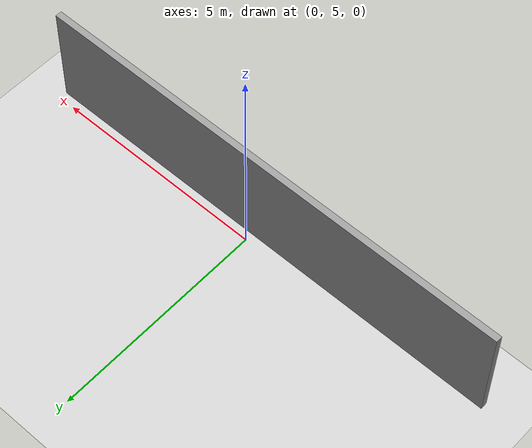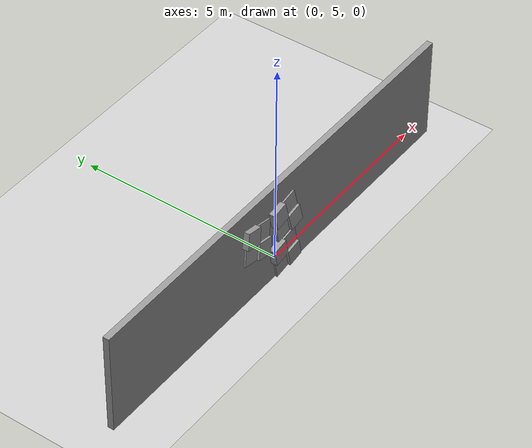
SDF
<sdf version="1.7">
 <world name="default">
  <model name="demo_clean">
   <static>1</static>
   <link name="Wall_9">
    <collision name="Wall_9_Collision">
     <geometry><box><size>11.25 0.15 2.5</size></box></geometry>
     <pose>0 0 1.25 0 -0 0</pose>
     <surface>
      <friction>
       <ode><mu>1</mu><mu2>1</mu2><fdir1>0 0 0</fdir1><slip1>0</slip1><slip2>0</slip2></ode>
       <torsional>
        <coefficient>1</coefficient>
        <patch_radius>0</patch_radius>
        <surface_radius>0</surface_radius>
        <use_patch_radius>1</use_patch_radius>
        <ode><slip>0</slip></ode>
       </torsional>
      </friction>
      <bounce><restitution_coefficient>0</restitution_coefficient><threshold>1e+06</threshold></bounce>
      <contact>
       <collide_without_contact>0</collide_without_contact>
       <collide_without_contact_bitmask>1</collide_without_contact_bitmask>
       <collide_bitmask>1</collide_bitmask>
       <ode>
        <soft_cfm>0</soft_cfm>
        <soft_erp>0.2</soft_erp>
        <kp>1e+13</kp>
        <kd>1</kd>
        <max_vel>0.01</max_vel>
        <min_depth>0</min_depth>
       </ode>
       <bullet>
        <split_impulse>1</split_impulse>
        <split_impulse_penetration_threshold>-0.01</split_impulse_penetration_threshold>
        <soft_cfm>0</soft_cfm>
        <soft_erp>0.2</soft_erp>
        <kp>1e+13</kp>
        <kd>1</kd>
       </bullet>
      </contact>
     </surface>
    </collision>
    <visual name="Wall_9_Visual">
     <geometry><box><size>11.25 0.15 2.5</size></box></geometry>
     <material>
      <script><name>Gazebo/Grey</name><uri>file://media/materials/scripts/gazebo.material</uri></script>
      <ambient>1 1 1 1</ambient>
      <shader type="pixel"><normal_map>default</normal_map></shader>
     </material>
     <pose>0 0 1.25 0 -0 0</pose>
    </visual>
    <pose>-0.246486 4.74118 0 0 -0 0</pose>
   </link>
  </model>
  <model name="ground_plane">
   <static>1</static>
   <link name="link">
    <collision name="collision">
     <geometry><plane><normal>0 0 1</normal><size>100 100</size></plane></geometry>
     <surface>
      <contact><collide_bitmask>65535</collide_bitmask></contact>
      <friction><ode><mu>100</mu><mu2>50</mu2></ode></friction>
     </surface>
    </collision>
    <visual name="visual">
     <cast_shadows>0</cast_shadows>
     <geometry><plane><normal>0 0 1</normal><size>100 100</size></plane></geometry>
     <material>
      <script><uri>file://media/materials/scripts/gazebo.material</uri><name>Gazebo/Grey</name></script>
     </material>
    </visual>
   </link>
  </model>
  <model name="wall_slate_54">
   <static>1</static>
   <link name="link_0">
    <inertial><mass>1</mass></inertial>
    <gravity>0</gravity>
    <visual name="visual">
     <pose>0 0.2 0.2 0 -0 0</pose>
     <geometry><box><size>0.16 0.4 0.4</size></box></geometry>
     <material>
      <lighting>1</lighting>
      <script><uri>file://media/materials/scripts/gazebo.material</uri><name>Gazebo/Grey</name></script>
      <shader type="pixel"><normal_map>__default__</normal_map></shader>
      <ambient>0.3 0.3 0.3 1</ambient>
      <diffuse>0.7 0.7 0.7 1</diffuse>
      <specular>0.01 0.01 0.01 1</specular>
      <emissive>0 0 0 1</emissive>
     </material>
    </visual>
    <visual name="ModelPreview_0::link_0::visual_1">
     <pose>0 0.2 -0.2 0 -0 0</pose>
     <geometry><box><size>0.04 0.4 0.4</size></box></geometry>
     <material>
      <lighting>1</lighting>
      <script><uri>file://media/materials/scripts/gazebo.material</uri><name>Gazebo/Grey</name></script>
      <shader type="pixel"><normal_map>__default__</normal_map></shader>
      <ambient>0.3 0.3 0.3 1</ambient>
      <diffuse>0.7 0.7 0.7 1</diffuse>
      <specular>0.01 0.01 0.01 1</specular>
      <emissive>0 0 0 1</emissive>
     </material>
    </visual>
    <visual name="ModelPreview_0::link_0::visual_2">
     <pose>0 -0.2 0.2 0 -0 0</pose>
     <geometry><box><size>0.04 0.4 0.4</size></box></geometry>
     <material>
      <lighting>1</lighting>
      <script><uri>file://media/materials/scripts/gazebo.material</uri><name>Gazebo/Grey</name></script>
      <shader type="pixel"><normal_map>__default__</normal_map></shader>
      <ambient>0.3 0.3 0.3 1</ambient>
      <diffuse>0.7 0.7 0.7 1</diffuse>
      <specular>0.01 0.01 0.01 1</specular>
      <emissive>0 0 0 1</emissive>
     </material>
    </visual>
    <visual name="ModelPreview_0::link_0::visual_3">
     <pose>0 -0.2 -0.2 0 -0 0</pose>
     <geometry><box><size>0.16 0.4 0.4</size></box></geometry>
     <material>
      <lighting>1</lighting>
      <script><uri>file://media/materials/scripts/gazebo.material</uri><name>Gazebo/Grey</name></script>
      <shader type="pixel"><normal_map>__default__</normal_map></shader>
      <ambient>0.3 0.3 0.3 1</ambient>
      <diffuse>0.7 0.7 0.7 1</diffuse>
      <specular>0.01 0.01 0.01 1</specular>
      <emissive>0 0 0 1</emissive>
     </material>
    </visual>
    <collision name="collision_2">
     <pose>0 -0.2 0.2 0 -0 0</pose>
     <geometry><box><size>0.04 0.4 0.4</size></box></geometry>
     <surface>
      <friction>
       <ode><mu>1</mu><mu2>1</mu2><fdir1>0 0 0</fdir1><slip1>0</slip1><slip2>0</slip2></ode>
       <torsional>
        <coefficient>1</coefficient>
        <patch_radius>0</patch_radius>
        <surface_radius>0</surface_radius>
        <use_patch_radius>1</use_patch_radius>
        <ode><slip>0</slip></ode>
       </torsional>
      </friction>
      <bounce><restitution_coefficient>0</restitution_coefficient><threshold>1e+06</threshold></bounce>
      <contact>
       <collide_without_contact>0</collide_without_contact>
       <collide_without_contact_bitmask>1</collide_without_contact_bitmask>
       <collide_bitmask>1</collide_bitmask>
       <ode>
        <soft_cfm>0</soft_cfm>
        <soft_erp>0.2</soft_erp>
        <kp>1e+13</kp>
        <kd>1</kd>
        <max_vel>0.01</max_vel>
        <min_depth>0</min_depth>
       </ode>
       <bullet>
        <split_impulse>1</split_impulse>
        <split_impulse_penetration_threshold>-0.01</split_impulse_penetration_threshold>
        <soft_cfm>0</soft_cfm>
        <soft_erp>0.2</soft_erp>
        <kp>1e+13</kp>
        <kd>1</kd>
       </bullet>
      </contact>
     </surface>
    </collision>
    <collision name="collision_1">
     <pose>0 0.2 -0.2 0 -0 0</pose>
     <geometry><box><size>0.04 0.4 0.4</size></box></geometry>
     <surface>
      <friction>
       <ode><mu>1</mu><mu2>1</mu2><fdir1>0 0 0</fdir1><slip1>0</slip1><slip2>0</slip2></ode>
       <torsional>
        <coefficient>1</coefficient>
        <patch_radius>0</patch_radius>
        <surface_radius>0</surface_radius>
        <use_patch_radius>1</use_patch_radius>
        <ode><slip>0</slip></ode>
       </torsional>
      </friction>
      <bounce><restitution_coefficient>0</restitution_coefficient><threshold>1e+06</threshold></bounce>
      <contact>
       <collide_without_contact>0</collide_without_contact>
       <collide_without_contact_bitmask>1</collide_without_contact_bitmask>
       <collide_bitmask>1</collide_bitmask>
       <ode>
        <soft_cfm>0</soft_cfm>
        <soft_erp>0.2</soft_erp>
        <kp>1e+13</kp>
        <kd>1</kd>
        <max_vel>0.01</max_vel>
        <min_depth>0</min_depth>
       </ode>
       <bullet>
        <split_impulse>1</split_impulse>
        <split_impulse_penetration_threshold>-0.01</split_impulse_penetration_threshold>
        <soft_cfm>0</soft_cfm>
        <soft_erp>0.2</soft_erp>
        <kp>1e+13</kp>
        <kd>1</kd>
       </bullet>
      </contact>
     </surface>
    </collision>
    <collision name="collision_4">
     <pose>0 0.2 0.2 0 -0 0</pose>
     <geometry><box><size>0.16 0.4 0.4</size></box></geometry>
     <surface>
      <friction>
       <ode><mu>1</mu><mu2>1</mu2><fdir1>0 0 0</fdir1><slip1>0</slip1><slip2>0</slip2></ode>
       <torsional>
        <coefficient>1</coefficient>
        <patch_radius>0</patch_radius>
        <surface_radius>0</surface_radius>
        <use_patch_radius>1</use_patch_radius>
        <ode><slip>0</slip></ode>
       </torsional>
      </friction>
      <bounce><restitution_coefficient>0</restitution_coefficient><threshold>1e+06</threshold></bounce>
      <contact>
       <collide_without_contact>0</collide_without_contact>
       <collide_without_contact_bitmask>1</collide_without_contact_bitmask>
       <collide_bitmask>1</collide_bitmask>
       <ode>
        <soft_cfm>0</soft_cfm>
        <soft_erp>0.2</soft_erp>
        <kp>1e+13</kp>
        <kd>1</kd>
        <max_vel>0.01</max_vel>
        <min_depth>0</min_depth>
       </ode>
       <bullet>
        <split_impulse>1</split_impulse>
        <split_impulse_penetration_threshold>-0.01</split_impulse_penetration_threshold>
        <soft_cfm>0</soft_cfm>
        <soft_erp>0.2</soft_erp>
        <kp>1e+13</kp>
        <kd>1</kd>
       </bullet>
      </contact>
     </surface>
    </collision>
    <collision name="collision_3">
     <pose>0 -0.2 -0.2 0 -0 0</pose>
     <geometry><box><size>0.16 0.4 0.4</size></box></geometry>
     <surface>
      <friction>
       <ode><mu>1</mu><mu2>1</mu2><fdir1>0 0 0</fdir1><slip1>0</slip1><slip2>0</slip2></ode>
       <torsional>
        <coefficient>1</coefficient>
        <patch_radius>0</patch_radius>
        <surface_radius>0</surface_radius>
        <use_patch_radius>1</use_patch_radius>
        <ode><slip>0</slip></ode>
       </torsional>
      </friction>
      <bounce><restitution_coefficient>0</restitution_coefficient><threshold>1e+06</threshold></bounce>
      <contact>
       <collide_without_contact>0</collide_without_contact>
       <collide_without_contact_bitmask>1</collide_without_contact_bitmask>
       <collide_bitmask>1</collide_bitmask>
       <ode>
        <soft_cfm>0</soft_cfm>
        <soft_erp>0.2</soft_erp>
        <kp>1e+13</kp>
        <kd>1</kd>
        <max_vel>0.01</max_vel>
        <min_depth>0</min_depth>
       </ode>
       <bullet>
        <split_impulse>1</split_impulse>
        <split_impulse_penetration_threshold>-0.01</split_impulse_penetration_threshold>
        <soft_cfm>0</soft_cfm>
        <soft_erp>0.2</soft_erp>
        <kp>1e+13</kp>
        <kd>1</kd>
       </bullet>
      </contact>
     </surface>
    </collision>
   </link>
   <pose>-0.246486 4.56618 0.6 -0.16 0.04 1.5757</pose>
  </model>
  <model name="wall_slate_68">
   <static>1</static>
   <link name="link_0">
    <inertial><mass>1</mass></inertial>
    <gravity>0</gravity>
    <visual name="visual">
     <pose>0 0.2 0.2 0 -0 0</pose>
     <geometry><box><size>0.16 0.4 0.4</size></box></geometry>
     <material>
      <lighting>1</lighting>
      <script><uri>file://media/materials/scripts/gazebo.material</uri><name>Gazebo/Grey</name></script>
      <shader type="pixel"><normal_map>__default__</normal_map></shader>
      <ambient>0.3 0.3 0.3 1</ambient>
      <diffuse>0.7 0.7 0.7 1</diffuse>
      <specular>0.01 0.01 0.01 1</specular>
      <emissive>0 0 0 1</emissive>
     </material>
    </visual>
    <visual name="ModelPreview_0::link_0::visual_1">
     <pose>0 0.2 -0.2 0 -0 0</pose>
     <geometry><box><size>0.04 0.4 0.4</size></box></geometry>
     <material>
      <lighting>1</lighting>
      <script><uri>file://media/materials/scripts/gazebo.material</uri><name>Gazebo/Grey</name></script>
      <shader type="pixel"><normal_map>__default__</normal_map></shader>
      <ambient>0.3 0.3 0.3 1</ambient>
      <diffuse>0.7 0.7 0.7 1</diffuse>
      <specular>0.01 0.01 0.01 1</specular>
      <emissive>0 0 0 1</emissive>
     </material>
    </visual>
    <visual name="ModelPreview_0::link_0::visual_2">
     <pose>0 -0.2 0.2 0 -0 0</pose>
     <geometry><box><size>0.04 0.4 0.4</size></box></geometry>
     <material>
      <lighting>1</lighting>
      <script><uri>file://media/materials/scripts/gazebo.material</uri><name>Gazebo/Grey</name></script>
      <shader type="pixel"><normal_map>__default__</normal_map></shader>
      <ambient>0.3 0.3 0.3 1</ambient>
      <diffuse>0.7 0.7 0.7 1</diffuse>
      <specular>0.01 0.01 0.01 1</specular>
      <emissive>0 0 0 1</emissive>
     </material>
    </visual>
    <visual name="ModelPreview_0::link_0::visual_3">
     <pose>0 -0.2 -0.2 0 -0 0</pose>
     <geometry><box><size>0.16 0.4 0.4</size></box></geometry>
     <material>
      <lighting>1</lighting>
      <script><uri>file://media/materials/scripts/gazebo.material</uri><name>Gazebo/Grey</name></script>
      <shader type="pixel"><normal_map>__default__</normal_map></shader>
      <ambient>0.3 0.3 0.3 1</ambient>
      <diffuse>0.7 0.7 0.7 1</diffuse>
      <specular>0.01 0.01 0.01 1</specular>
      <emissive>0 0 0 1</emissive>
     </material>
    </visual>
    <collision name="collision_2">
     <pose>0 -0.2 0.2 0 -0 0</pose>
     <geometry><box><size>0.04 0.4 0.4</size></box></geometry>
     <surface>
      <friction>
       <ode><mu>1</mu><mu2>1</mu2><fdir1>0 0 0</fdir1><slip1>0</slip1><slip2>0</slip2></ode>
       <torsional>
        <coefficient>1</coefficient>
        <patch_radius>0</patch_radius>
        <surface_radius>0</surface_radius>
        <use_patch_radius>1</use_patch_radius>
        <ode><slip>0</slip></ode>
       </torsional>
      </friction>
      <bounce><restitution_coefficient>0</restitution_coefficient><threshold>1e+06</threshold></bounce>
      <contact>
       <collide_without_contact>0</collide_without_contact>
       <collide_without_contact_bitmask>1</collide_without_contact_bitmask>
       <collide_bitmask>1</collide_bitmask>
       <ode>
        <soft_cfm>0</soft_cfm>
        <soft_erp>0.2</soft_erp>
        <kp>1e+13</kp>
        <kd>1</kd>
        <max_vel>0.01</max_vel>
        <min_depth>0</min_depth>
       </ode>
       <bullet>
        <split_impulse>1</split_impulse>
        <split_impulse_penetration_threshold>-0.01</split_impulse_penetration_threshold>
        <soft_cfm>0</soft_cfm>
        <soft_erp>0.2</soft_erp>
        <kp>1e+13</kp>
        <kd>1</kd>
       </bullet>
      </contact>
     </surface>
    </collision>
    <collision name="collision_1">
     <pose>0 0.2 -0.2 0 -0 0</pose>
     <geometry><box><size>0.04 0.4 0.4</size></box></geometry>
     <surface>
      <friction>
       <ode><mu>1</mu><mu2>1</mu2><fdir1>0 0 0</fdir1><slip1>0</slip1><slip2>0</slip2></ode>
       <torsional>
        <coefficient>1</coefficient>
        <patch_radius>0</patch_radius>
        <surface_radius>0</surface_radius>
        <use_patch_radius>1</use_patch_radius>
        <ode><slip>0</slip></ode>
       </torsional>
      </friction>
      <bounce><restitution_coefficient>0</restitution_coefficient><threshold>1e+06</threshold></bounce>
      <contact>
       <collide_without_contact>0</collide_without_contact>
       <collide_without_contact_bitmask>1</collide_without_contact_bitmask>
       <collide_bitmask>1</collide_bitmask>
       <ode>
        <soft_cfm>0</soft_cfm>
        <soft_erp>0.2</soft_erp>
        <kp>1e+13</kp>
        <kd>1</kd>
        <max_vel>0.01</max_vel>
        <min_depth>0</min_depth>
       </ode>
       <bullet>
        <split_impulse>1</split_impulse>
        <split_impulse_penetration_threshold>-0.01</split_impulse_penetration_threshold>
        <soft_cfm>0</soft_cfm>
        <soft_erp>0.2</soft_erp>
        <kp>1e+13</kp>
        <kd>1</kd>
       </bullet>
      </contact>
     </surface>
    </collision>
    <collision name="collision_4">
     <pose>0 0.2 0.2 0 -0 0</pose>
     <geometry><box><size>0.16 0.4 0.4</size></box></geometry>
     <surface>
      <friction>
       <ode><mu>1</mu><mu2>1</mu2><fdir1>0 0 0</fdir1><slip1>0</slip1><slip2>0</slip2></ode>
       <torsional>
        <coefficient>1</coefficient>
        <patch_radius>0</patch_radius>
        <surface_radius>0</surface_radius>
        <use_patch_radius>1</use_patch_radius>
        <ode><slip>0</slip></ode>
       </torsional>
      </friction>
      <bounce><restitution_coefficient>0</restitution_coefficient><threshold>1e+06</threshold></bounce>
      <contact>
       <collide_without_contact>0</collide_without_contact>
       <collide_without_contact_bitmask>1</collide_without_contact_bitmask>
       <collide_bitmask>1</collide_bitmask>
       <ode>
        <soft_cfm>0</soft_cfm>
        <soft_erp>0.2</soft_erp>
        <kp>1e+13</kp>
        <kd>1</kd>
        <max_vel>0.01</max_vel>
        <min_depth>0</min_depth>
       </ode>
       <bullet>
        <split_impulse>1</split_impulse>
        <split_impulse_penetration_threshold>-0.01</split_impulse_penetration_threshold>
        <soft_cfm>0</soft_cfm>
        <soft_erp>0.2</soft_erp>
        <kp>1e+13</kp>
        <kd>1</kd>
       </bullet>
      </contact>
     </surface>
    </collision>
    <collision name="collision_3">
     <pose>0 -0.2 -0.2 0 -0 0</pose>
     <geometry><box><size>0.16 0.4 0.4</size></box></geometry>
     <surface>
      <friction>
       <ode><mu>1</mu><mu2>1</mu2><fdir1>0 0 0</fdir1><slip1>0</slip1><slip2>0</slip2></ode>
       <torsional>
        <coefficient>1</coefficient>
        <patch_radius>0</patch_radius>
        <surface_radius>0</surface_radius>
        <use_patch_radius>1</use_patch_radius>
        <ode><slip>0</slip></ode>
       </torsional>
      </friction>
      <bounce><restitution_coefficient>0</restitution_coefficient><threshold>1e+06</threshold></bounce>
      <contact>
       <collide_without_contact>0</collide_without_contact>
       <collide_without_contact_bitmask>1</collide_without_contact_bitmask>
       <collide_bitmask>1</collide_bitmask>
       <ode>
        <soft_cfm>0</soft_cfm>
        <soft_erp>0.2</soft_erp>
        <kp>1e+13</kp>
        <kd>1</kd>
        <max_vel>0.01</max_vel>
        <min_depth>0</min_depth>
       </ode>
       <bullet>
        <split_impulse>1</split_impulse>
        <split_impulse_penetration_threshold>-0.01</split_impulse_penetration_threshold>
        <soft_cfm>0</soft_cfm>
        <soft_erp>0.2</soft_erp>
        <kp>1e+13</kp>
        <kd>1</kd>
       </bullet>
      </contact>
     </surface>
    </collision>
   </link>
   <pose>-0.246486 4.56618 1.6 -0.16 0.1 1.5757</pose>
  </model>
  <model name="wall_slate_107">
   <static>1</static>
   <link name="link_0">
    <inertial><mass>1</mass></inertial>
    <gravity>0</gravity>
    <visual name="visual">
     <pose>0 0.2 0.2 0 -0 0</pose>
     <geometry><box><size>0.16 0.4 0.4</size></box></geometry>
     <material>
      <lighting>1</lighting>
      <script><uri>file://media/materials/scripts/gazebo.material</uri><name>Gazebo/Grey</name></script>
      <shader type="pixel"><normal_map>__default__</normal_map></shader>
      <ambient>0.3 0.3 0.3 1</ambient>
      <diffuse>0.7 0.7 0.7 1</diffuse>
      <specular>0.01 0.01 0.01 1</specular>
      <emissive>0 0 0 1</emissive>
     </material>
    </visual>
    <visual name="ModelPreview_0::link_0::visual_1">
     <pose>0 0.2 -0.2 0 -0 0</pose>
     <geometry><box><size>0.04 0.4 0.4</size></box></geometry>
     <material>
      <lighting>1</lighting>
      <script><uri>file://media/materials/scripts/gazebo.material</uri><name>Gazebo/Grey</name></script>
      <shader type="pixel"><normal_map>__default__</normal_map></shader>
      <ambient>0.3 0.3 0.3 1</ambient>
      <diffuse>0.7 0.7 0.7 1</diffuse>
      <specular>0.01 0.01 0.01 1</specular>
      <emissive>0 0 0 1</emissive>
     </material>
    </visual>
    <visual name="ModelPreview_0::link_0::visual_2">
     <pose>0 -0.2 0.2 0 -0 0</pose>
     <geometry><box><size>0.04 0.4 0.4</size></box></geometry>
     <material>
      <lighting>1</lighting>
      <script><uri>file://media/materials/scripts/gazebo.material</uri><name>Gazebo/Grey</name></script>
      <shader type="pixel"><normal_map>__default__</normal_map></shader>
      <ambient>0.3 0.3 0.3 1</ambient>
      <diffuse>0.7 0.7 0.7 1</diffuse>
      <specular>0.01 0.01 0.01 1</specular>
      <emissive>0 0 0 1</emissive>
     </material>
    </visual>
    <visual name="ModelPreview_0::link_0::visual_3">
     <pose>0 -0.2 -0.2 0 -0 0</pose>
     <geometry><box><size>0.16 0.4 0.4</size></box></geometry>
     <material>
      <lighting>1</lighting>
      <script><uri>file://media/materials/scripts/gazebo.material</uri><name>Gazebo/Grey</name></script>
      <shader type="pixel"><normal_map>__default__</normal_map></shader>
      <ambient>0.3 0.3 0.3 1</ambient>
      <diffuse>0.7 0.7 0.7 1</diffuse>
      <specular>0.01 0.01 0.01 1</specular>
      <emissive>0 0 0 1</emissive>
     </material>
    </visual>
    <collision name="collision_2">
     <pose>0 -0.2 0.2 0 -0 0</pose>
     <geometry><box><size>0.04 0.4 0.4</size></box></geometry>
     <surface>
      <friction>
       <ode><mu>1</mu><mu2>1</mu2><fdir1>0 0 0</fdir1><slip1>0</slip1><slip2>0</slip2></ode>
       <torsional>
        <coefficient>1</coefficient>
        <patch_radius>0</patch_radius>
        <surface_radius>0</surface_radius>
        <use_patch_radius>1</use_patch_radius>
        <ode><slip>0</slip></ode>
       </torsional>
      </friction>
      <bounce><restitution_coefficient>0</restitution_coefficient><threshold>1e+06</threshold></bounce>
      <contact>
       <collide_without_contact>0</collide_without_contact>
       <collide_without_contact_bitmask>1</collide_without_contact_bitmask>
       <collide_bitmask>1</collide_bitmask>
       <ode>
        <soft_cfm>0</soft_cfm>
        <soft_erp>0.2</soft_erp>
        <kp>1e+13</kp>
        <kd>1</kd>
        <max_vel>0.01</max_vel>
        <min_depth>0</min_depth>
       </ode>
       <bullet>
        <split_impulse>1</split_impulse>
        <split_impulse_penetration_threshold>-0.01</split_impulse_penetration_threshold>
        <soft_cfm>0</soft_cfm>
        <soft_erp>0.2</soft_erp>
        <kp>1e+13</kp>
        <kd>1</kd>
       </bullet>
      </contact>
     </surface>
    </collision>
    <collision name="collision_1">
     <pose>0 0.2 -0.2 0 -0 0</pose>
     <geometry><box><size>0.04 0.4 0.4</size></box></geometry>
     <surface>
      <friction>
       <ode><mu>1</mu><mu2>1</mu2><fdir1>0 0 0</fdir1><slip1>0</slip1><slip2>0</slip2></ode>
       <torsional>
        <coefficient>1</coefficient>
        <patch_radius>0</patch_radius>
        <surface_radius>0</surface_radius>
        <use_patch_radius>1</use_patch_radius>
        <ode><slip>0</slip></ode>
       </torsional>
      </friction>
      <bounce><restitution_coefficient>0</restitution_coefficient><threshold>1e+06</threshold></bounce>
      <contact>
       <collide_without_contact>0</collide_without_contact>
       <collide_without_contact_bitmask>1</collide_without_contact_bitmask>
       <collide_bitmask>1</collide_bitmask>
       <ode>
        <soft_cfm>0</soft_cfm>
        <soft_erp>0.2</soft_erp>
        <kp>1e+13</kp>
        <kd>1</kd>
        <max_vel>0.01</max_vel>
        <min_depth>0</min_depth>
       </ode>
       <bullet>
        <split_impulse>1</split_impulse>
        <split_impulse_penetration_threshold>-0.01</split_impulse_penetration_threshold>
        <soft_cfm>0</soft_cfm>
        <soft_erp>0.2</soft_erp>
        <kp>1e+13</kp>
        <kd>1</kd>
       </bullet>
      </contact>
     </surface>
    </collision>
    <collision name="collision_4">
     <pose>0 0.2 0.2 0 -0 0</pose>
     <geometry><box><size>0.16 0.4 0.4</size></box></geometry>
     <surface>
      <friction>
       <ode><mu>1</mu><mu2>1</mu2><fdir1>0 0 0</fdir1><slip1>0</slip1><slip2>0</slip2></ode>
       <torsional>
        <coefficient>1</coefficient>
        <patch_radius>0</patch_radius>
        <surface_radius>0</surface_radius>
        <use_patch_radius>1</use_patch_radius>
        <ode><slip>0</slip></ode>
       </torsional>
      </friction>
      <bounce><restitution_coefficient>0</restitution_coefficient><threshold>1e+06</threshold></bounce>
      <contact>
       <collide_without_contact>0</collide_without_contact>
       <collide_without_contact_bitmask>1</collide_without_contact_bitmask>
       <collide_bitmask>1</collide_bitmask>
       <ode>
        <soft_cfm>0</soft_cfm>
        <soft_erp>0.2</soft_erp>
        <kp>1e+13</kp>
        <kd>1</kd>
        <max_vel>0.01</max_vel>
        <min_depth>0</min_depth>
       </ode>
       <bullet>
        <split_impulse>1</split_impulse>
        <split_impulse_penetration_threshold>-0.01</split_impulse_penetration_threshold>
        <soft_cfm>0</soft_cfm>
        <soft_erp>0.2</soft_erp>
        <kp>1e+13</kp>
        <kd>1</kd>
       </bullet>
      </contact>
     </surface>
    </collision>
    <collision name="collision_3">
     <pose>0 -0.2 -0.2 0 -0 0</pose>
     <geometry><box><size>0.16 0.4 0.4</size></box></geometry>
     <surface>
      <friction>
       <ode><mu>1</mu><mu2>1</mu2><fdir1>0 0 0</fdir1><slip1>0</slip1><slip2>0</slip2></ode>
       <torsional>
        <coefficient>1</coefficient>
        <patch_radius>0</patch_radius>
        <surface_radius>0</surface_radius>
        <use_patch_radius>1</use_patch_radius>
        <ode><slip>0</slip></ode>
       </torsional>
      </friction>
      <bounce><restitution_coefficient>0</restitution_coefficient><threshold>1e+06</threshold></bounce>
      <contact>
       <collide_without_contact>0</collide_without_contact>
       <collide_without_contact_bitmask>1</collide_without_contact_bitmask>
       <collide_bitmask>1</collide_bitmask>
       <ode>
        <soft_cfm>0</soft_cfm>
        <soft_erp>0.2</soft_erp>
        <kp>1e+13</kp>
        <kd>1</kd>
        <max_vel>0.01</max_vel>
        <min_depth>0</min_depth>
       </ode>
       <bullet>
        <split_impulse>1</split_impulse>
        <split_impulse_penetration_threshold>-0.01</split_impulse_penetration_threshold>
        <soft_cfm>0</soft_cfm>
        <soft_erp>0.2</soft_erp>
        <kp>1e+13</kp>
        <kd>1</kd>
       </bullet>
      </contact>
     </surface>
    </collision>
   </link>
   <pose>-1.24649 4.56618 1.6 0.2 0.1 1.5757</pose>
  </model>
 </world>
</sdf>
